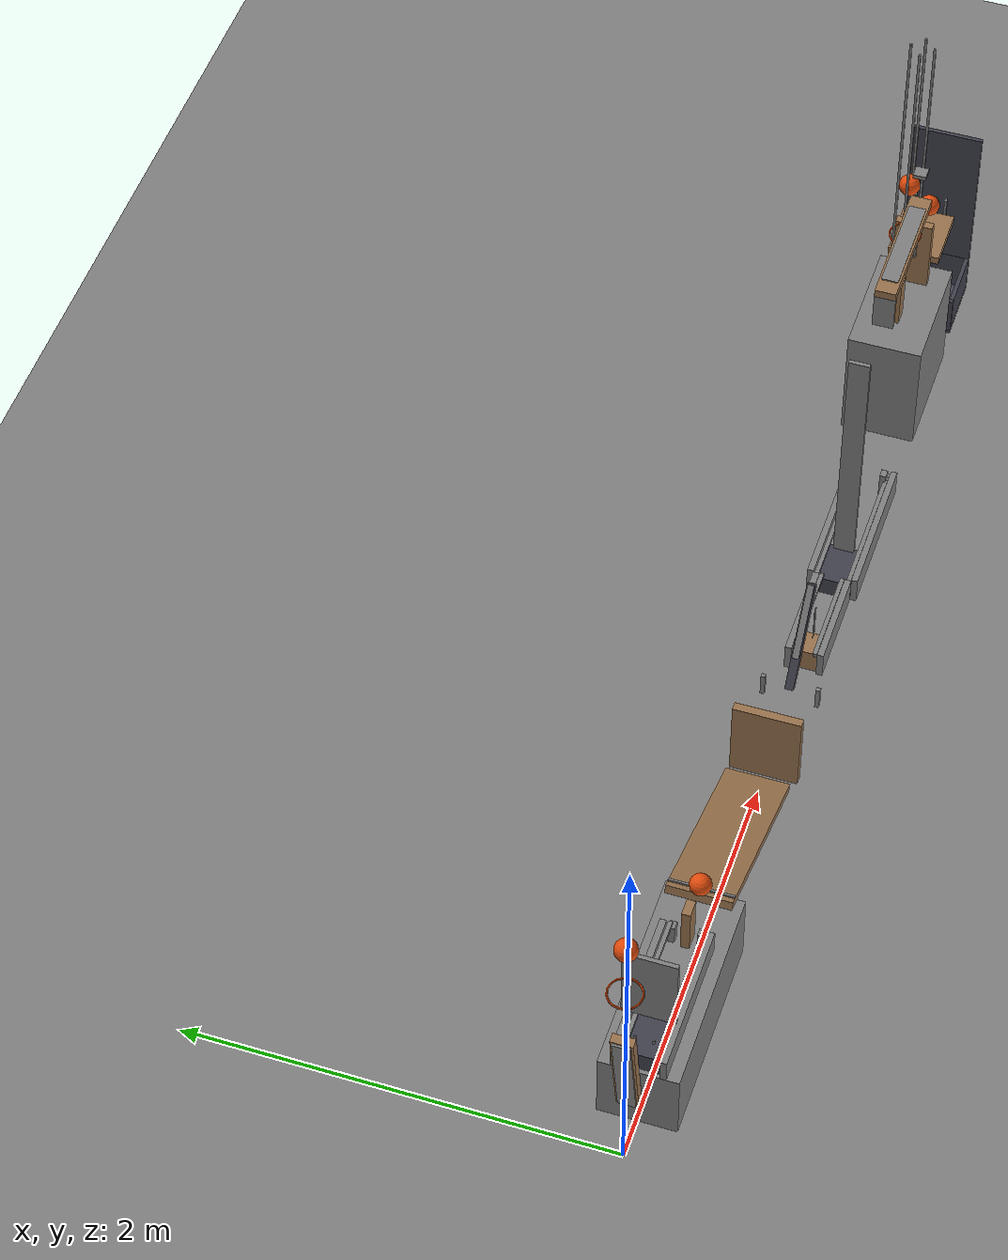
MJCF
<mujoco model="horizontal_strike_gravity_cascade">
  <compiler angle="radian"/>
  <option timestep="0.002"/>
  <worldbody>
    <geom name="floor" type="plane" size="12 12 0.1" friction="0.72 0.001 0.0001"/>
    <body name="ring1">
      <geom name="ring1_00" type="capsule" size="0.004" fromto="0.0416017 0 1.24892 0.0359688 0.0283186 1.24892" friction="0.72 0.005 0.0001" solref="0.01 1" rgba="0.9 0.3 0.05 1"/>
      <geom name="ring1_01" type="capsule" size="0.004" fromto="0.0359688 0.0283186 1.24892 0.0199276 0.0523259 1.24892" friction="0.72 0.005 0.0001" solref="0.01 1" rgba="0.9 0.3 0.05 1"/>
      <geom name="ring1_02" type="capsule" size="0.004" fromto="0.0199276 0.0523259 1.24892 -0.00407972 0.0683671 1.24892" friction="0.72 0.005 0.0001" solref="0.01 1" rgba="0.9 0.3 0.05 1"/>
      <geom name="ring1_03" type="capsule" size="0.004" fromto="-0.00407972 0.0683671 1.24892 -0.0323983 0.074 1.24892" friction="0.72 0.005 0.0001" solref="0.01 1" rgba="0.9 0.3 0.05 1"/>
      <geom name="ring1_04" type="capsule" size="0.004" fromto="-0.0323983 0.074 1.24892 -0.0607169 0.0683671 1.24892" friction="0.72 0.005 0.0001" solref="0.01 1" rgba="0.9 0.3 0.05 1"/>
      <geom name="ring1_05" type="capsule" size="0.004" fromto="-0.0607169 0.0683671 1.24892 -0.0847242 0.0523259 1.24892" friction="0.72 0.005 0.0001" solref="0.01 1" rgba="0.9 0.3 0.05 1"/>
      <geom name="ring1_06" type="capsule" size="0.004" fromto="-0.0847242 0.0523259 1.24892 -0.100765 0.0283186 1.24892" friction="0.72 0.005 0.0001" solref="0.01 1" rgba="0.9 0.3 0.05 1"/>
      <geom name="ring1_07" type="capsule" size="0.004" fromto="-0.100765 0.0283186 1.24892 -0.106398 9.06239e-18 1.24892" friction="0.72 0.005 0.0001" solref="0.01 1" rgba="0.9 0.3 0.05 1"/>
      <geom name="ring1_08" type="capsule" size="0.004" fromto="-0.106398 9.06239e-18 1.24892 -0.100765 -0.0283186 1.24892" friction="0.72 0.005 0.0001" solref="0.01 1" rgba="0.9 0.3 0.05 1"/>
      <geom name="ring1_09" type="capsule" size="0.004" fromto="-0.100765 -0.0283186 1.24892 -0.0847242 -0.0523259 1.24892" friction="0.72 0.005 0.0001" solref="0.01 1" rgba="0.9 0.3 0.05 1"/>
      <geom name="ring1_10" type="capsule" size="0.004" fromto="-0.0847242 -0.0523259 1.24892 -0.0607169 -0.0683671 1.24892" friction="0.72 0.005 0.0001" solref="0.01 1" rgba="0.9 0.3 0.05 1"/>
      <geom name="ring1_11" type="capsule" size="0.004" fromto="-0.0607169 -0.0683671 1.24892 -0.0323983 -0.074 1.24892" friction="0.72 0.005 0.0001" solref="0.01 1" rgba="0.9 0.3 0.05 1"/>
      <geom name="ring1_12" type="capsule" size="0.004" fromto="-0.0323983 -0.074 1.24892 -0.00407972 -0.0683671 1.24892" friction="0.72 0.005 0.0001" solref="0.01 1" rgba="0.9 0.3 0.05 1"/>
      <geom name="ring1_13" type="capsule" size="0.004" fromto="-0.00407972 -0.0683671 1.24892 0.0199276 -0.0523259 1.24892" friction="0.72 0.005 0.0001" solref="0.01 1" rgba="0.9 0.3 0.05 1"/>
      <geom name="ring1_14" type="capsule" size="0.004" fromto="0.0199276 -0.0523259 1.24892 0.0359688 -0.0283186 1.24892" friction="0.72 0.005 0.0001" solref="0.01 1" rgba="0.9 0.3 0.05 1"/>
      <geom name="ring1_15" type="capsule" size="0.004" fromto="0.0359688 -0.0283186 1.24892 0.0416017 -1.81248e-17 1.24892" friction="0.72 0.005 0.0001" solref="0.01 1" rgba="0.9 0.3 0.05 1"/>
    </body>
    <body name="lever1" pos="0 0 0.65">
      <joint name="lever1_hinge" type="hinge" pos="0 0 0" axis="0 1 0" limited="true" range="-0.785398 0" damping="0.04"/>
      <geom name="lever1" type="box" pos="0 0 0" size="0.3 0.05 0.02" euler="0 1.39626 0" mass="0.499" friction="0.72 0.005 0.0001" solref="0.01 1" rgba="0.6 0.45 0.3 1"/>
      <geom name="lever paddle" type="box" pos="0.1 0 -0.29" size="0.03 0.02 0.005" euler="0 -1.09956 0" mass="0.001" friction="0.72 0.005 0.0001" solref="0.01 1"/>
    </body>
    <body name="lever booster" pos="0 0 0.65">
      <joint name="lever_booster_hinge" type="hinge" pos="0 0 0" axis="0 1 0" limited="true" range="-0.785398 0" damping="0.04"/>
      <geom name="lever booster" type="box" pos="2.5e-07 0 0.0025" size="0.00025 0.00025 0.00025" mass="20000" contype="0" conaffinity="0"/>
      <geom name="lever booster coupling" type="box" pos="-0.0246202 0 -0.0043412" size="0.29 0.04 0.005" euler="0 1.39626 0" mass="0.002" friction="0.72 0.005 0.0001" solref="0.01 1"/>
    </body>
    <body name="lever left hard stop">
      <geom name="lever left hard stop" type="box" pos="0.257 0.04 0.50596" size="0.002 0.006 0.01" friction="0.72 0.005 0.0001" solref="0.01 1"/>
    </body>
    <body name="lever right hard stop">
      <geom name="lever right hard stop" type="box" pos="0.257 -0.04 0.50596" size="0.002 0.006 0.01" friction="0.72 0.005 0.0001" solref="0.01 1"/>
    </body>
    <body name="ball1" pos="-0.0323983 0 1.54892">
      <freejoint/>
      <geom name="ball1" type="sphere" pos="0 0 0" size="0.05" mass="0.2" condim="6" friction="0.72 0.001 0.0001" solref="0.01 1" rgba="0.9 0.3 0.05 1"/>
    </body>
    <body name="ball1 screen">
      <geom name="ball1 screen" type="box" pos="0.32 0 0.8" size="0.01 0.12 0.2" friction="0.72 0.005 0.0001" solref="0.01 1"/>
    </body>
    <body name="first slide bed">
      <geom name="first slide bed" type="box" pos="0.665 0 0.185" size="0.485 0.18 0.185" friction="0.72 0.005 0.0001" solref="0.01 1"/>
    </body>
    <body name="cart1" pos="0.31 0 0.42">
      <freejoint/>
      <geom name="cart1" type="box" pos="0 0 0" size="0.11 0.09 0.05" mass="0.499" friction="0.72 0.005 0.0001" solref="0.01 1" rgba="0.25 0.25 0.3 1"/>
      <geom name="cart1 striker" type="box" pos="0.1 0 0.11" size="0.01 0.03 0.06" mass="0.001" friction="0.72 0.005 0.0001" solref="0.01 1"/>
    </body>
    <body name="first slide left rail">
      <geom name="first slide left rail" type="box" pos="0.525 0.107 0.43" size="0.345 0.015 0.06" friction="0.72 0.005 0.0001" solref="0.01 1"/>
    </body>
    <body name="first slide right rail">
      <geom name="first slide right rail" type="box" pos="0.525 -0.107 0.43" size="0.345 0.015 0.06" friction="0.72 0.005 0.0001" solref="0.01 1"/>
    </body>
    <body name="first slide left roof">
      <geom name="first slide left roof" type="box" pos="0.525 0.075 0.482" size="0.345 0.01 0.01" friction="0.72 0.005 0.0001" solref="0.01 1"/>
    </body>
    <body name="first slide right roof">
      <geom name="first slide right roof" type="box" pos="0.525 -0.075 0.482" size="0.345 0.01 0.01" friction="0.72 0.005 0.0001" solref="0.01 1"/>
    </body>
    <body name="first slide left bumper">
      <geom name="first slide left bumper" type="box" pos="0.87 0.065 0.42" size="0.02 0.015 0.05" friction="0.72 0.005 0.0001" solref="0.01 1"/>
    </body>
    <body name="first slide right bumper">
      <geom name="first slide right bumper" type="box" pos="0.87 -0.065 0.42" size="0.02 0.015 0.05" friction="0.72 0.005 0.0001" solref="0.01 1"/>
    </body>
    <body name="domino1" pos="0.88 0 0.49">
      <freejoint/>
      <geom name="domino1" type="box" pos="0 0 0" size="0.04 0.02 0.12" mass="0.25" friction="0.72 0.005 0.0001" solref="0.01 1" rgba="0.6 0.45 0.3 1"/>
    </body>
    <body name="ramp1">
      <geom name="ramp1" type="box" pos="1.5059 0 0.302216" size="0.5 0.15 0.02" euler="0 0.349066 0" friction="0.72 0.005 0.0001" solref="0.01 1" rgba="0.6 0.45 0.3 1"/>
    </body>
    <body name="ball2" pos="1.06 0 0.539005">
      <freejoint/>
      <geom name="ball2" type="sphere" pos="0 0 0" size="0.05" mass="0.2" condim="6" friction="0.72 0.001 0.0001" solref="0.01 1" rgba="0.9 0.3 0.05 1"/>
    </body>
    <body name="ramp retaining lip">
      <geom name="ramp retaining lip" type="box" pos="1.079 0 0.481005" size="0.005 0.15 0.01" friction="0.72 0.005 0.0001" solref="0.01 1"/>
    </body>
    <body name="door1" pos="2.10259 0 0.03">
      <joint name="door1_hinge" type="hinge" pos="0 0 0" axis="0 1 0" limited="true" range="0 1.22173" damping="0.04"/>
      <geom name="door1" type="box" pos="0 0 0.21" size="0.02 0.16 0.21" mass="0.45" friction="0.72 0.005 0.0001" solref="0.01 1" rgba="0.6 0.45 0.3 1"/>
    </body>
    <body name="door left hard stop">
      <geom name="door left hard stop" type="box" pos="2.5142 0.13 0.13" size="0.01 0.01 0.06" friction="0.72 0.005 0.0001" solref="0.01 1"/>
    </body>
    <body name="door right hard stop">
      <geom name="door right hard stop" type="box" pos="2.5142 -0.13 0.13" size="0.01 0.01 0.06" friction="0.72 0.005 0.0001" solref="0.01 1"/>
    </body>
    <body name="pendulum1" pos="2.80259 0 0.56">
      <joint name="pendulum1_hinge" type="hinge" pos="0 0 0" axis="0 1 0" limited="true" range="-0.663225 0" damping="0.04"/>
      <geom name="pendulum1" type="box" pos="-0.153915 0 -0.197003" size="0.25 0.02 0.02" euler="0 2.23402 0" mass="0.35" friction="0.72 0.005 0.0001" solref="0.01 1" rgba="0.25 0.25 0.3 1"/>
    </body>
    <body name="pendulum booster" pos="2.80259 0 0.56">
      <joint name="pendulum_booster_hinge" type="hinge" pos="0 0 0" axis="0 1 0" limited="true" range="-0.663225 0" damping="0.04"/>
      <geom name="pendulum booster" type="box" pos="1e-05 0 0.004" size="0.0005 0.0005 0.0005" mass="30000" contype="0" conaffinity="0"/>
      <geom name="pendulum front coupling" type="box" pos="-0.0896165 0 -0.152062" size="0.175 0.015 0.003" euler="0 2.23402 0" mass="0.002" friction="0.72 0.005 0.0001" solref="0.01 1"/>
      <geom name="pendulum back coupling" type="box" pos="-0.125865 0 -0.123742" size="0.175 0.015 0.003" euler="0 2.23402 0" mass="0.002" friction="0.72 0.005 0.0001" solref="0.01 1"/>
    </body>
    <body name="pendulum left hard stop">
      <geom name="pendulum left hard stop" type="box" pos="2.83259 0.018 0.26" size="0.01 0.0015 0.1" friction="0.72 0.005 0.0001" solref="0.01 1"/>
    </body>
    <body name="pendulum right hard stop">
      <geom name="pendulum right hard stop" type="box" pos="2.83259 -0.018 0.26" size="0.01 0.0015 0.1" friction="0.72 0.005 0.0001" solref="0.01 1"/>
    </body>
    <body name="block1" pos="2.82259 0 0.06">
      <freejoint/>
      <geom name="block1" type="box" pos="0 0 0" size="0.06 0.06 0.06" mass="0.35" friction="0.72 0.005 0.0001" solref="0.01 1" rgba="0.6 0.45 0.3 1"/>
    </body>
    <body name="block left guide">
      <geom name="block left guide" type="box" pos="2.98759 0.077 0.07" size="0.24 0.015 0.07" friction="0.72 0.005 0.0001" solref="0.01 1"/>
    </body>
    <body name="block right guide">
      <geom name="block right guide" type="box" pos="2.98759 -0.077 0.07" size="0.24 0.015 0.07" friction="0.72 0.005 0.0001" solref="0.01 1"/>
    </body>
    <body name="block left roof">
      <geom name="block left roof" type="box" pos="2.98759 0.05 0.132" size="0.24 0.01 0.01" friction="0.72 0.005 0.0001" solref="0.01 1"/>
    </body>
    <body name="block right roof">
      <geom name="block right roof" type="box" pos="2.98759 -0.05 0.132" size="0.24 0.01 0.01" friction="0.72 0.005 0.0001" solref="0.01 1"/>
    </body>
    <body name="cart2" pos="3.34259 0 0.05">
      <freejoint/>
      <geom name="cart2" type="box" pos="0 0 0" size="0.11 0.09 0.05" mass="0.499" friction="0.72 0.005 0.0001" solref="0.01 1" rgba="0.25 0.25 0.3 1"/>
      <geom name="cart2 striker" type="box" pos="0.1 0 0.684849" size="0.01 0.05 0.634849" mass="0.001" friction="0.72 0.005 0.0001" solref="0.01 1"/>
    </body>
    <body name="second slide left rail">
      <geom name="second slide left rail" type="box" pos="3.59259 0.107 0.07" size="0.36 0.015 0.07" friction="0.72 0.005 0.0001" solref="0.01 1"/>
    </body>
    <body name="second slide right rail">
      <geom name="second slide right rail" type="box" pos="3.59259 -0.107 0.07" size="0.36 0.015 0.07" friction="0.72 0.005 0.0001" solref="0.01 1"/>
    </body>
    <body name="second slide left roof">
      <geom name="second slide left roof" type="box" pos="3.59259 0.078 0.112" size="0.36 0.01 0.01" friction="0.72 0.005 0.0001" solref="0.01 1"/>
    </body>
    <body name="second slide right roof">
      <geom name="second slide right roof" type="box" pos="3.59259 -0.078 0.112" size="0.36 0.01 0.01" friction="0.72 0.005 0.0001" solref="0.01 1"/>
    </body>
    <body name="second slide left bumper">
      <geom name="second slide left bumper" type="box" pos="3.91259 0.065 0.08" size="0.02 0.015 0.08" friction="0.72 0.005 0.0001" solref="0.01 1"/>
    </body>
    <body name="second slide right bumper">
      <geom name="second slide right bumper" type="box" pos="3.91259 -0.065 0.08" size="0.02 0.015 0.08" friction="0.72 0.005 0.0001" solref="0.01 1"/>
    </body>
    <body name="seesaw1" pos="4.19759 0 1.3867">
      <joint name="seesaw1_hinge" type="hinge" pos="0 0 0" axis="0 1 0" limited="true" range="-0.733038 0" damping="0.04"/>
      <geom name="seesaw1" type="box" pos="0 0 0" size="0.325 0.05 0.02" mass="0.549" friction="0.72 0.005 0.0001" solref="0.01 1" rgba="0.6 0.45 0.3 1"/>
      <geom name="seesaw left end fin" type="box" pos="-0.315 0 -0.11" size="0.01 0.05 0.09" mass="0.001" friction="0.72 0.005 0.0001" solref="0.01 1"/>
    </body>
    <body name="seesaw booster" pos="4.19759 0 1.3867">
      <joint name="seesaw_booster_hinge" type="hinge" pos="0 0 0" axis="0 1 0" limited="true" range="-0.733038 0" damping="0.04"/>
      <geom name="seesaw booster" type="box" pos="0 0 0.02" size="0.001 0.001 0.001" mass="200" contype="0" conaffinity="0"/>
      <geom name="seesaw lower coupling" type="box" pos="0 0 -0.023" size="0.25 0.04 0.003" mass="0.002" friction="0.72 0.005 0.0001" solref="0.01 1"/>
      <geom name="seesaw upper coupling" type="box" pos="0 0 0.023" size="0.25 0.04 0.003" mass="0.002" friction="0.72 0.005 0.0001" solref="0.01 1"/>
    </body>
    <body name="seesaw hard stop">
      <geom name="seesaw hard stop" type="box" pos="4.44759 0 1.62913" size="0.03 0.03 0.01" friction="0.72 0.005 0.0001" solref="0.01 1"/>
    </body>
    <body name="ring2">
      <geom name="ring2_00" type="capsule" size="0.004" fromto="4.61659 0.065 1.13 4.61096 0.0933186 1.13" friction="0.72 0.005 0.0001" solref="0.01 1" rgba="0.9 0.3 0.05 1"/>
      <geom name="ring2_01" type="capsule" size="0.004" fromto="4.61096 0.0933186 1.13 4.59492 0.117326 1.13" friction="0.72 0.005 0.0001" solref="0.01 1" rgba="0.9 0.3 0.05 1"/>
      <geom name="ring2_02" type="capsule" size="0.004" fromto="4.59492 0.117326 1.13 4.57091 0.133367 1.13" friction="0.72 0.005 0.0001" solref="0.01 1" rgba="0.9 0.3 0.05 1"/>
      <geom name="ring2_03" type="capsule" size="0.004" fromto="4.57091 0.133367 1.13 4.54259 0.139 1.13" friction="0.72 0.005 0.0001" solref="0.01 1" rgba="0.9 0.3 0.05 1"/>
      <geom name="ring2_04" type="capsule" size="0.004" fromto="4.54259 0.139 1.13 4.51427 0.133367 1.13" friction="0.72 0.005 0.0001" solref="0.01 1" rgba="0.9 0.3 0.05 1"/>
      <geom name="ring2_05" type="capsule" size="0.004" fromto="4.51427 0.133367 1.13 4.49027 0.117326 1.13" friction="0.72 0.005 0.0001" solref="0.01 1" rgba="0.9 0.3 0.05 1"/>
      <geom name="ring2_06" type="capsule" size="0.004" fromto="4.49027 0.117326 1.13 4.47422 0.0933186 1.13" friction="0.72 0.005 0.0001" solref="0.01 1" rgba="0.9 0.3 0.05 1"/>
      <geom name="ring2_07" type="capsule" size="0.004" fromto="4.47422 0.0933186 1.13 4.46859 0.065 1.13" friction="0.72 0.005 0.0001" solref="0.01 1" rgba="0.9 0.3 0.05 1"/>
      <geom name="ring2_08" type="capsule" size="0.004" fromto="4.46859 0.065 1.13 4.47422 0.0366814 1.13" friction="0.72 0.005 0.0001" solref="0.01 1" rgba="0.9 0.3 0.05 1"/>
      <geom name="ring2_09" type="capsule" size="0.004" fromto="4.47422 0.0366814 1.13 4.49027 0.0126741 1.13" friction="0.72 0.005 0.0001" solref="0.01 1" rgba="0.9 0.3 0.05 1"/>
      <geom name="ring2_10" type="capsule" size="0.004" fromto="4.49027 0.0126741 1.13 4.51427 -0.00336709 1.13" friction="0.72 0.005 0.0001" solref="0.01 1" rgba="0.9 0.3 0.05 1"/>
      <geom name="ring2_11" type="capsule" size="0.004" fromto="4.51427 -0.00336709 1.13 4.54259 -0.009 1.13" friction="0.72 0.005 0.0001" solref="0.01 1" rgba="0.9 0.3 0.05 1"/>
      <geom name="ring2_12" type="capsule" size="0.004" fromto="4.54259 -0.009 1.13 4.57091 -0.00336709 1.13" friction="0.72 0.005 0.0001" solref="0.01 1" rgba="0.9 0.3 0.05 1"/>
      <geom name="ring2_13" type="capsule" size="0.004" fromto="4.57091 -0.00336709 1.13 4.59492 0.0126741 1.13" friction="0.72 0.005 0.0001" solref="0.01 1" rgba="0.9 0.3 0.05 1"/>
      <geom name="ring2_14" type="capsule" size="0.004" fromto="4.59492 0.0126741 1.13 4.61096 0.0366814 1.13" friction="0.72 0.005 0.0001" solref="0.01 1" rgba="0.9 0.3 0.05 1"/>
      <geom name="ring2_15" type="capsule" size="0.004" fromto="4.61096 0.0366814 1.13 4.61659 0.065 1.13" friction="0.72 0.005 0.0001" solref="0.01 1" rgba="0.9 0.3 0.05 1"/>
    </body>
    <body name="ball3 near guide">
      <geom name="ball3 near guide" type="box" pos="4.48709 0.065 1.65" size="0.005 0.005 0.65" friction="0.72 0.005 0.0001" solref="0.01 1"/>
    </body>
    <body name="ball3 far guide">
      <geom name="ball3 far guide" type="box" pos="4.59809 0.065 1.65" size="0.005 0.005 0.65" friction="0.72 0.005 0.0001" solref="0.01 1"/>
    </body>
    <body name="ball3 left guide">
      <geom name="ball3 left guide" type="box" pos="4.54259 0.1205 1.65" size="0.005 0.005 0.65" friction="0.72 0.005 0.0001" solref="0.01 1"/>
    </body>
    <body name="ball3 right guide">
      <geom name="ball3 right guide" type="box" pos="4.54259 0.0095 1.65" size="0.005 0.005 0.65" friction="0.72 0.005 0.0001" solref="0.01 1"/>
    </body>
    <body name="ball3" pos="4.54259 0.065 1.45">
      <freejoint/>
      <geom name="ball3" type="sphere" pos="0 0 0" size="0.05" mass="0.2" condim="6" friction="0.72 0.001 0.0001" solref="0.01 1" rgba="0.9 0.3 0.05 1"/>
    </body>
    <body name="final platform">
      <geom name="final platform" type="box" pos="4.6 0.065 0.3" size="0.3 0.18 0.3" friction="0.72 0.005 0.0001" solref="0.01 1"/>
    </body>
    <body name="domino2" pos="4.51759 0.065 0.72">
      <freejoint/>
      <geom name="domino2" type="box" pos="0 0 0" size="0.04 0.02 0.12" mass="0.25" friction="0.72 0.005 0.0001" solref="0.01 1" rgba="0.6 0.45 0.3 1"/>
    </body>
    <body name="flap1" pos="4.75759 0.065 0.63">
      <joint name="flap1_hinge" type="hinge" pos="0 0 0" axis="0 1 0" limited="true" range="0 1.0472" damping="0.04"/>
      <geom name="flap1" type="box" pos="0 0 0.19" size="0.02 0.09 0.19" mass="0.28" friction="0.72 0.005 0.0001" solref="0.01 1" rgba="0.6 0.45 0.3 1"/>
    </body>
    <body name="flap left hard stop">
      <geom name="flap left hard stop" type="box" pos="5.10688 0.14 0.8" size="0.01 0.005 0.06" friction="0.72 0.005 0.0001" solref="0.01 1"/>
    </body>
    <body name="flap right hard stop">
      <geom name="flap right hard stop" type="box" pos="5.10688 -0.01 0.8" size="0.01 0.005 0.06" friction="0.72 0.005 0.0001" solref="0.01 1"/>
    </body>
    <body name="cup1">
      <geom name="cup1_base" type="box" pos="5.23668 0.065 0.01" size="0.17 0.17 0.01" friction="0.72 0.005 0.0001" solref="0.01 1" rgba="0.25 0.25 0.3 1"/>
      <geom name="cup1_near_wall" type="box" pos="5.07668 0.065 0.12" size="0.01 0.17 0.1" friction="0.72 0.005 0.0001" solref="0.01 1" rgba="0.25 0.25 0.3 1"/>
      <geom name="cup1_far_wall" type="box" pos="5.39668 0.065 0.12" size="0.01 0.17 0.1" friction="0.72 0.005 0.0001" solref="0.01 1" rgba="0.25 0.25 0.3 1"/>
      <geom name="cup1_left_wall" type="box" pos="5.23668 0.225 0.12" size="0.15 0.01 0.1" friction="0.72 0.005 0.0001" solref="0.01 1" rgba="0.25 0.25 0.3 1"/>
      <geom name="cup1_right_wall" type="box" pos="5.23668 -0.095 0.12" size="0.15 0.01 0.1" friction="0.72 0.005 0.0001" solref="0.01 1" rgba="0.25 0.25 0.3 1"/>
    </body>
    <body name="shelf1">
      <geom name="shelf1" type="box" pos="4.94668 0.065 0.75" size="0.15 0.125 0.02" friction="0.72 0.005 0.0001" solref="0.01 1" rgba="0.6 0.45 0.3 1"/>
    </body>
    <body name="ball4" pos="5.08668 0.065 0.82">
      <freejoint/>
      <geom name="ball4" type="sphere" pos="0 0 0" size="0.05" mass="0.2" condim="6" friction="0.72 0.001 0.0001" solref="0.01 1" rgba="0.9 0.3 0.05 1"/>
    </body>
    <body name="cup catch backboard">
      <geom name="cup catch backboard" type="box" pos="5.39668 0.065 0.62" size="0.01 0.17 0.4" friction="0.72 0.005 0.0001" solref="0.01 1" rgba="0.25 0.25 0.3 1"/>
    </body>
  </worldbody>
  <keyframe>
    <key name="start" qpos="0 0 -0.0323983 0 1.54892 1 0 0 0 0.31 0 0.42 1 0 0 0 0.88 0 0.49 1 0 0 0 1.06 0 0.539005 1 0 0 0 0 0 0 2.82259 0 0.06 1 0 0 0 3.34259 0 0.05 1 0 0 0 0 0 4.54259 0.065 1.45 1 0 0 0 4.51759 0.065 0.72 1 0 0 0 0 5.08668 0.065 0.82 1 0 0 0" qvel="0 0 0 0 0 0 0 0 0 0 0 0 0 0 0 0 0 0 0 0 0 0 0 0 0 0 0 0 0 0 0 0 0 0 0 0 0 0 0 0 0 0 0 0 0 0 0 0 0 0 0 0 0 0 0 0 0 0 0 0 0 0"/>
  </keyframe>
</mujoco>
